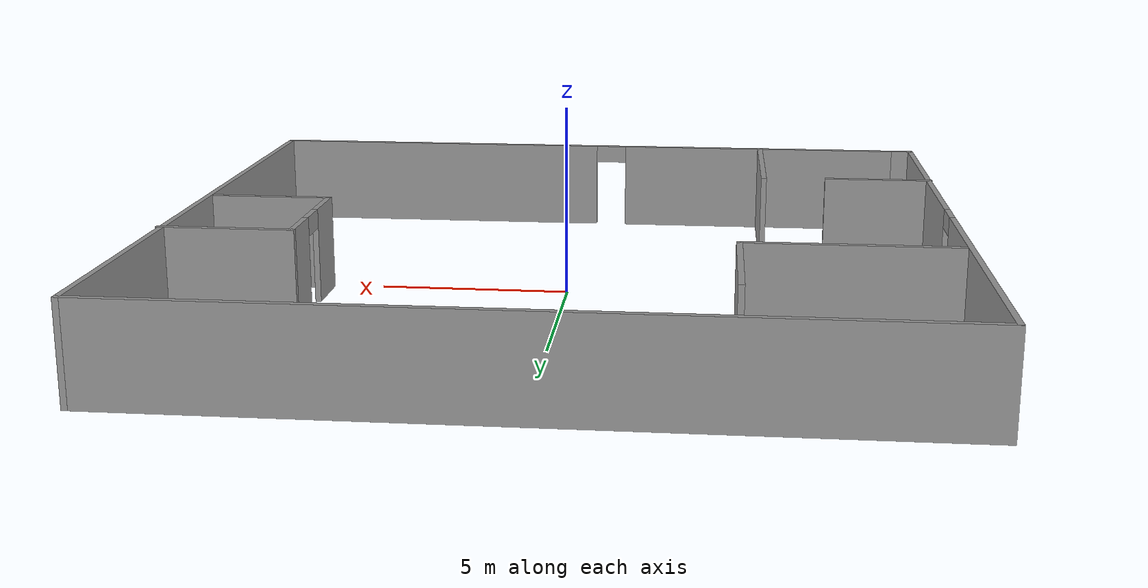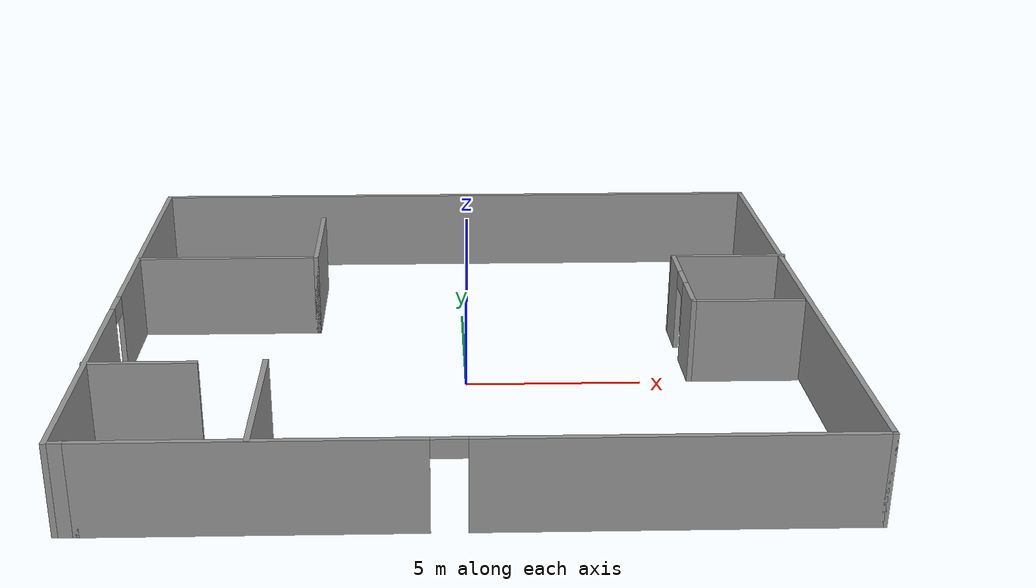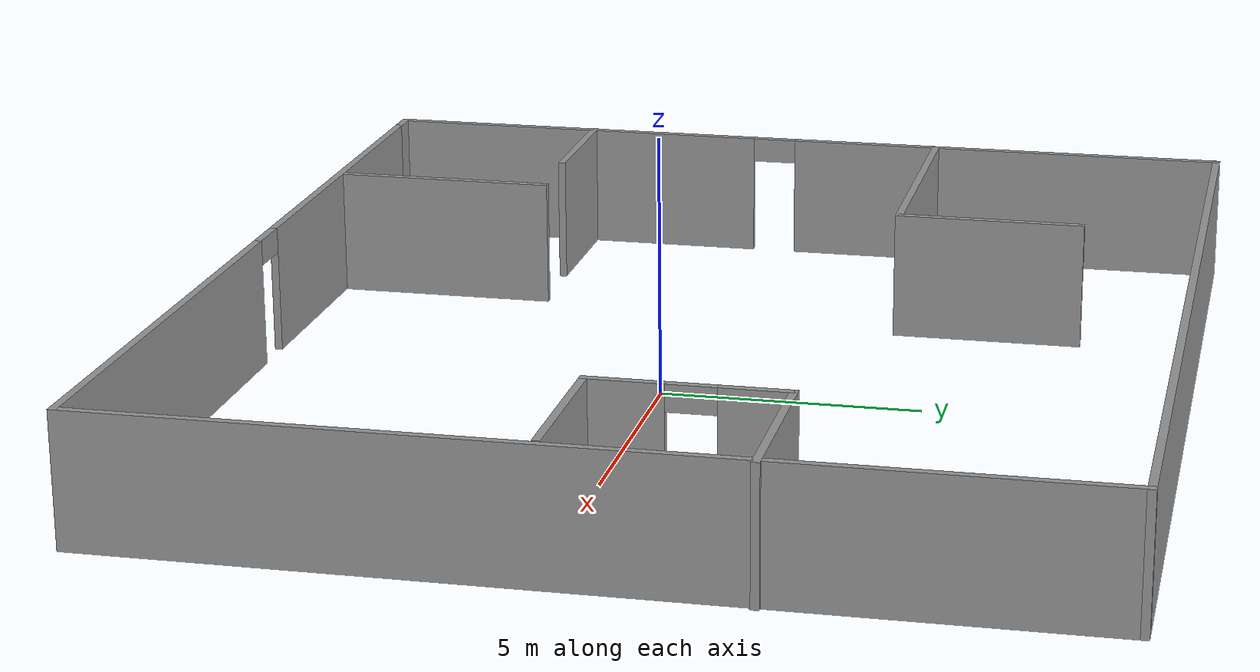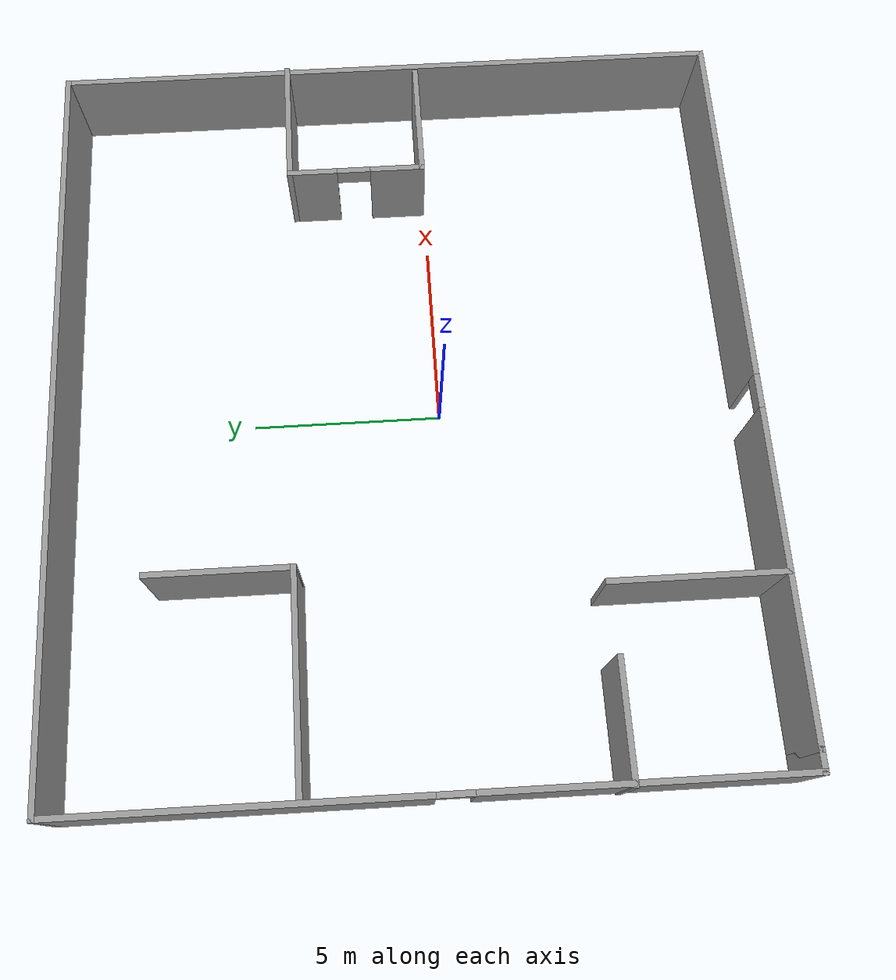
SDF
<?xml version='1.0'?>
<sdf version='1.7'>
  <model name='room_test_better'>
    <pose>-0.074599 0.919464 0 0 -0 0</pose>
    <link name='Wall_10'>
      <collision name='Wall_10_Collision'>
        <geometry>
          <box>
            <size>5.5 0.15 2.5</size>
          </box>
        </geometry>
        <pose>0 0 1.25 0 -0 0</pose>
      </collision>
      <visual name='Wall_10_Visual'>
        <pose>0 0 1.25 0 -0 0</pose>
        <geometry>
          <box>
            <size>5.5 0.15 2.5</size>
          </box>
        </geometry>
        <material>
          <script>
            <uri>file://media/materials/scripts/gazebo.material</uri>
            <name>Gazebo/Grey</name>
          </script>
          <ambient>1 1 1 1</ambient>
        </material>
        <meta>
          <layer>0</layer>
        </meta>
      </visual>
      <pose>-7.09502 2.95372 0 0 -0 0</pose>
    </link>
    <link name='Wall_11'>
      <collision name='Wall_11_Collision'>
        <geometry>
          <box>
            <size>3.75 0.15 2.5</size>
          </box>
        </geometry>
        <pose>0 0 1.25 0 -0 0</pose>
      </collision>
      <visual name='Wall_11_Visual'>
        <pose>0 0 1.25 0 -0 0</pose>
        <geometry>
          <box>
            <size>3.75 0.15 2.5</size>
          </box>
        </geometry>
        <material>
          <script>
            <uri>file://media/materials/scripts/gazebo.material</uri>
            <name>Gazebo/Grey</name>
          </script>
          <ambient>1 1 1 1</ambient>
        </material>
        <meta>
          <layer>0</layer>
        </meta>
      </visual>
      <pose>-4.42002 4.75372 0 0 -0 1.5708</pose>
    </link>
    <link name='Wall_13'>
      <collision name='Wall_13_Collision'>
        <geometry>
          <box>
            <size>3.5 0.15 2.5</size>
          </box>
        </geometry>
        <pose>0 0 1.25 0 -0 0</pose>
      </collision>
      <visual name='Wall_13_Visual'>
        <pose>0 0 1.25 0 -0 0</pose>
        <geometry>
          <box>
            <size>3.5 0.15 2.5</size>
          </box>
        </geometry>
        <material>
          <script>
            <uri>file://media/materials/scripts/gazebo.material</uri>
            <name>Gazebo/Grey</name>
          </script>
          <ambient>1 1 1 1</ambient>
        </material>
        <meta>
          <layer>0</layer>
        </meta>
      </visual>
      <pose>8.17593 2.7919 0 0 -0 3.14159</pose>
    </link>
    <link name='Wall_14'>
      <pose>6.50093 0.991899 0 0 -0 -1.5708</pose>
      <visual name='Wall_14_Visual_0'>
        <pose>-1.1927 0 1.25 0 -0 0</pose>
        <geometry>
          <box>
            <size>1.36459 0.15 2.5</size>
          </box>
        </geometry>
        <material>
          <script>
            <uri>file://media/materials/scripts/gazebo.material</uri>
            <name>Gazebo/Grey</name>
          </script>
          <ambient>1 1 1 1</ambient>
        </material>
        <meta>
          <layer>0</layer>
        </meta>
      </visual>
      <collision name='Wall_14_Collision_0'>
        <geometry>
          <box>
            <size>1.36459 0.15 2.5</size>
          </box>
        </geometry>
        <pose>-1.1927 0 1.25 0 -0 0</pose>
      </collision>
      <visual name='Wall_14_Visual_1'>
        <pose>1.1323 0 1.25 0 -0 0</pose>
        <geometry>
          <box>
            <size>1.48541 0.15 2.5</size>
          </box>
        </geometry>
        <material>
          <script>
            <uri>file://media/materials/scripts/gazebo.material</uri>
            <name>Gazebo/Grey</name>
          </script>
          <ambient>1 1 1 1</ambient>
        </material>
        <meta>
          <layer>0</layer>
        </meta>
      </visual>
      <collision name='Wall_14_Collision_1'>
        <geometry>
          <box>
            <size>1.48541 0.15 2.5</size>
          </box>
        </geometry>
        <pose>1.1323 0 1.25 0 -0 0</pose>
      </collision>
      <visual name='Wall_14_Visual_2'>
        <pose>-0.06041 0 2.25 0 -0 0</pose>
        <geometry>
          <box>
            <size>0.9 0.15 0.5</size>
          </box>
        </geometry>
        <material>
          <script>
            <uri>file://media/materials/scripts/gazebo.material</uri>
            <name>Gazebo/Grey</name>
          </script>
          <ambient>1 1 1 1</ambient>
        </material>
        <meta>
          <layer>0</layer>
        </meta>
      </visual>
      <collision name='Wall_14_Collision_2'>
        <geometry>
          <box>
            <size>0.9 0.15 0.5</size>
          </box>
        </geometry>
        <pose>-0.06041 0 2.25 0 -0 0</pose>
      </collision>
    </link>
    <link name='Wall_15'>
      <collision name='Wall_15_Collision'>
        <geometry>
          <box>
            <size>3.25 0.15 2.5</size>
          </box>
        </geometry>
        <pose>0 0 1.25 0 -0 0</pose>
      </collision>
      <visual name='Wall_15_Visual'>
        <pose>0 0 1.25 0 -0 0</pose>
        <geometry>
          <box>
            <size>3.25 0.15 2.5</size>
          </box>
        </geometry>
        <material>
          <script>
            <uri>file://media/materials/scripts/gazebo.material</uri>
            <name>Gazebo/Grey</name>
          </script>
          <ambient>1 1 1 1</ambient>
        </material>
        <meta>
          <layer>0</layer>
        </meta>
      </visual>
      <pose>8.05093 -0.808101 0 0 -0 0</pose>
    </link>
    <link name='Wall_17'>
      <collision name='Wall_17_Collision'>
        <geometry>
          <box>
            <size>4.5 0.15 2.5</size>
          </box>
        </geometry>
        <pose>0 0 1.25 0 -0 0</pose>
      </collision>
      <visual name='Wall_17_Visual'>
        <pose>0 0 1.25 0 -0 0</pose>
        <geometry>
          <box>
            <size>4.5 0.15 2.5</size>
          </box>
        </geometry>
        <material>
          <script>
            <uri>file://media/materials/scripts/gazebo.material</uri>
            <name>Gazebo/Grey</name>
          </script>
          <ambient>1 1 1 1</ambient>
        </material>
        <meta>
          <layer>0</layer>
        </meta>
      </visual>
      <pose>-5.19854 -6.72476 0 0 -0 1.5708</pose>
    </link>
    <link name='Wall_20'>
      <collision name='Wall_20_Collision'>
        <geometry>
          <box>
            <size>3 0.15 2.5</size>
          </box>
        </geometry>
        <pose>0 0 1.25 0 -0 0</pose>
      </collision>
      <visual name='Wall_20_Visual'>
        <pose>0 0 1.25 0 -0 0</pose>
        <geometry>
          <box>
            <size>3 0.15 2.5</size>
          </box>
        </geometry>
        <material>
          <script>
            <uri>file://media/materials/scripts/gazebo.material</uri>
            <name>Gazebo/Grey</name>
          </script>
          <ambient>1 1 1 1</ambient>
        </material>
        <meta>
          <layer>0</layer>
        </meta>
      </visual>
      <pose>-8.42593 -4.61147 0 0 -0 0</pose>
    </link>
    <link name='Wall_4'>
      <pose>0.23116 -8.925 0 0 -0 0</pose>
      <visual name='Wall_4_Visual_0'>
        <pose>-5.42615 0 1.25 0 -0 0</pose>
        <geometry>
          <box>
            <size>8.39769 0.15 2.5</size>
          </box>
        </geometry>
        <material>
          <script>
            <uri>file://media/materials/scripts/gazebo.material</uri>
            <name>Gazebo/Grey</name>
          </script>
          <ambient>1 1 1 1</ambient>
        </material>
        <meta>
          <layer>0</layer>
        </meta>
      </visual>
      <collision name='Wall_4_Collision_0'>
        <geometry>
          <box>
            <size>8.39769 0.15 2.5</size>
          </box>
        </geometry>
        <pose>-5.42615 0 1.25 0 -0 0</pose>
      </collision>
      <visual name='Wall_4_Visual_1'>
        <pose>4.64884 0 1.25 0 -0 0</pose>
        <geometry>
          <box>
            <size>9.95231 0.15 2.5</size>
          </box>
        </geometry>
        <material>
          <script>
            <uri>file://media/materials/scripts/gazebo.material</uri>
            <name>Gazebo/Grey</name>
          </script>
          <ambient>1 1 1 1</ambient>
        </material>
        <meta>
          <layer>0</layer>
        </meta>
      </visual>
      <collision name='Wall_4_Collision_1'>
        <geometry>
          <box>
            <size>9.95231 0.15 2.5</size>
          </box>
        </geometry>
        <pose>4.64884 0 1.25 0 -0 0</pose>
      </collision>
      <visual name='Wall_4_Visual_2'>
        <pose>-0.77731 0 2.25 0 -0 0</pose>
        <geometry>
          <box>
            <size>0.9 0.15 0.5</size>
          </box>
        </geometry>
        <material>
          <script>
            <uri>file://media/materials/scripts/gazebo.material</uri>
            <name>Gazebo/Grey</name>
          </script>
          <ambient>1 1 1 1</ambient>
        </material>
        <meta>
          <layer>0</layer>
        </meta>
      </visual>
      <collision name='Wall_4_Collision_2'>
        <geometry>
          <box>
            <size>0.9 0.15 0.5</size>
          </box>
        </geometry>
        <pose>-0.77731 0 2.25 0 -0 0</pose>
      </collision>
    </link>
    <link name='Wall_5'>
      <collision name='Wall_5_Collision'>
        <geometry>
          <box>
            <size>18 0.15 2.5</size>
          </box>
        </geometry>
        <pose>0 0 1.25 0 -0 0</pose>
      </collision>
      <visual name='Wall_5_Visual'>
        <pose>0 0 1.25 0 -0 0</pose>
        <geometry>
          <box>
            <size>18 0.15 2.5</size>
          </box>
        </geometry>
        <material>
          <script>
            <uri>file://media/materials/scripts/gazebo.material</uri>
            <name>Gazebo/Grey</name>
          </script>
          <ambient>1 1 1 1</ambient>
        </material>
        <meta>
          <layer>0</layer>
        </meta>
      </visual>
      <pose>9.78116 0 0 0 -0 1.5708</pose>
    </link>
    <link name='Wall_6'>
      <collision name='Wall_6_Collision'>
        <geometry>
          <box>
            <size>19.75 0.15 2.5</size>
          </box>
        </geometry>
        <pose>0 0 1.25 0 -0 0</pose>
      </collision>
      <visual name='Wall_6_Visual'>
        <pose>0 0 1.25 0 -0 0</pose>
        <geometry>
          <box>
            <size>19.75 0.15 2.5</size>
          </box>
        </geometry>
        <material>
          <script>
            <uri>file://media/materials/scripts/gazebo.material</uri>
            <name>Gazebo/Grey</name>
          </script>
          <ambient>1 1 1 1</ambient>
        </material>
        <meta>
          <layer>0</layer>
        </meta>
      </visual>
      <pose>-0.01884 8.925 0 0 -0 3.14159</pose>
    </link>
    <link name='Wall_7'>
      <pose>-9.81884 0 0 0 -0 -1.5708</pose>
      <visual name='Wall_7_Visual_0'>
        <pose>-4.44204 0 1.25 0 -0 0</pose>
        <geometry>
          <box>
            <size>9.11591 0.15 2.5</size>
          </box>
        </geometry>
        <material>
          <script>
            <uri>file://media/materials/scripts/gazebo.material</uri>
            <name>Gazebo/Grey</name>
          </script>
          <ambient>1 1 1 1</ambient>
        </material>
        <meta>
          <layer>0</layer>
        </meta>
      </visual>
      <collision name='Wall_7_Collision_0'>
        <geometry>
          <box>
            <size>9.11591 0.15 2.5</size>
          </box>
        </geometry>
        <pose>-4.44204 0 1.25 0 -0 0</pose>
      </collision>
      <visual name='Wall_7_Visual_1'>
        <pose>5.00796 0 1.25 0 -0 0</pose>
        <geometry>
          <box>
            <size>7.98409 0.15 2.5</size>
          </box>
        </geometry>
        <material>
          <script>
            <uri>file://media/materials/scripts/gazebo.material</uri>
            <name>Gazebo/Grey</name>
          </script>
          <ambient>1 1 1 1</ambient>
        </material>
        <meta>
          <layer>0</layer>
        </meta>
      </visual>
      <collision name='Wall_7_Collision_1'>
        <geometry>
          <box>
            <size>7.98409 0.15 2.5</size>
          </box>
        </geometry>
        <pose>5.00796 0 1.25 0 -0 0</pose>
      </collision>
      <visual name='Wall_7_Visual_2'>
        <pose>0.565914 0 2.25 0 -0 0</pose>
        <geometry>
          <box>
            <size>0.9 0.15 0.5</size>
          </box>
        </geometry>
        <material>
          <script>
            <uri>file://media/materials/scripts/gazebo.material</uri>
            <name>Gazebo/Grey</name>
          </script>
          <ambient>1 1 1 1</ambient>
        </material>
        <meta>
          <layer>0</layer>
        </meta>
      </visual>
      <collision name='Wall_7_Collision_2'>
        <geometry>
          <box>
            <size>0.9 0.15 0.5</size>
          </box>
        </geometry>
        <pose>0.565914 0 2.25 0 -0 0</pose>
      </collision>
    </link>
    <link name='Wall_8'>
      <collision name='Wall_8_Collision'>
        <geometry>
          <box>
            <size>0.65 0.15 2.5</size>
          </box>
        </geometry>
        <pose>0 0 1.25 0 -0 0</pose>
      </collision>
      <visual name='Wall_8_Visual'>
        <pose>0 0 1.25 0 -0 0</pose>
        <geometry>
          <box>
            <size>0.65 0.15 2.5</size>
          </box>
        </geometry>
        <material>
          <script>
            <uri>file://media/materials/scripts/gazebo.material</uri>
            <name>Gazebo/Grey</name>
          </script>
          <ambient>1 1 1 1</ambient>
        </material>
        <meta>
          <layer>0</layer>
        </meta>
      </visual>
      <pose>-9.56884 -8.925 0 0 -0 0</pose>
    </link>
    <static>1</static>
  </model>
</sdf>
